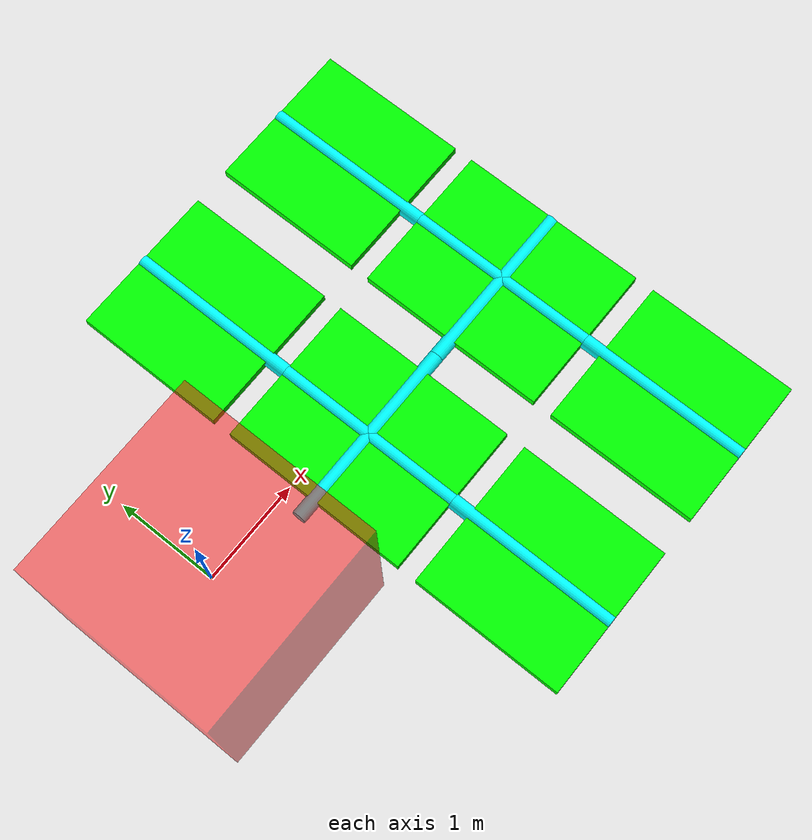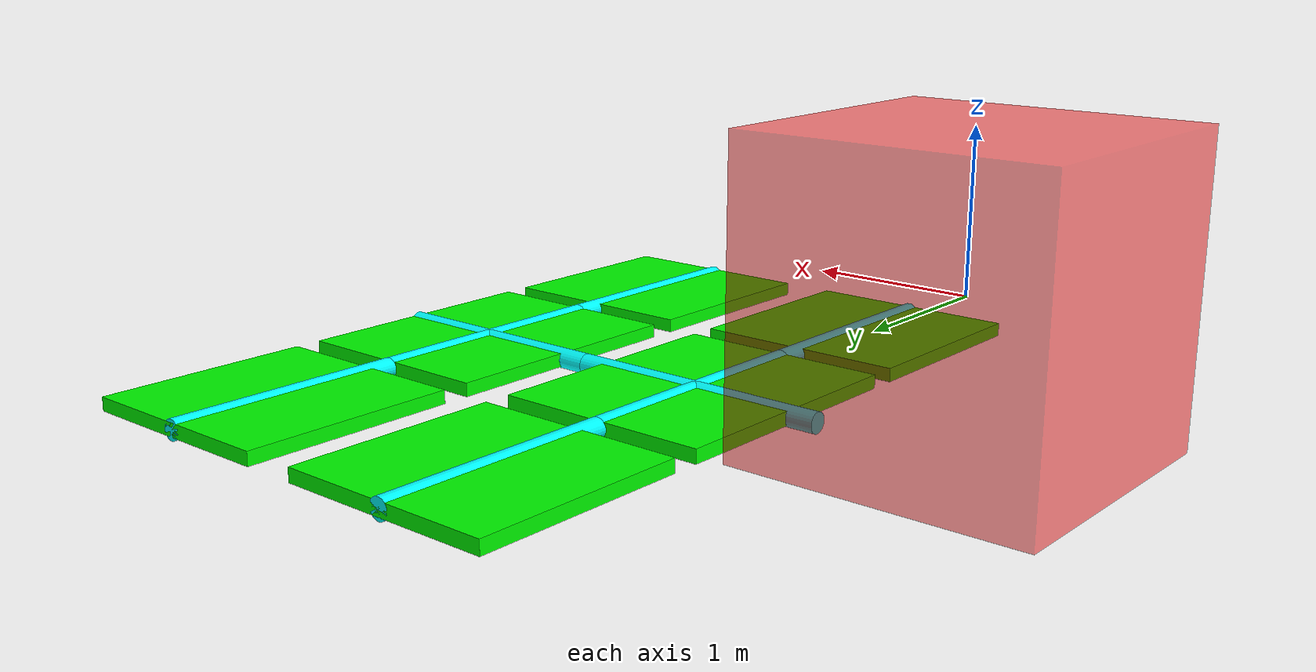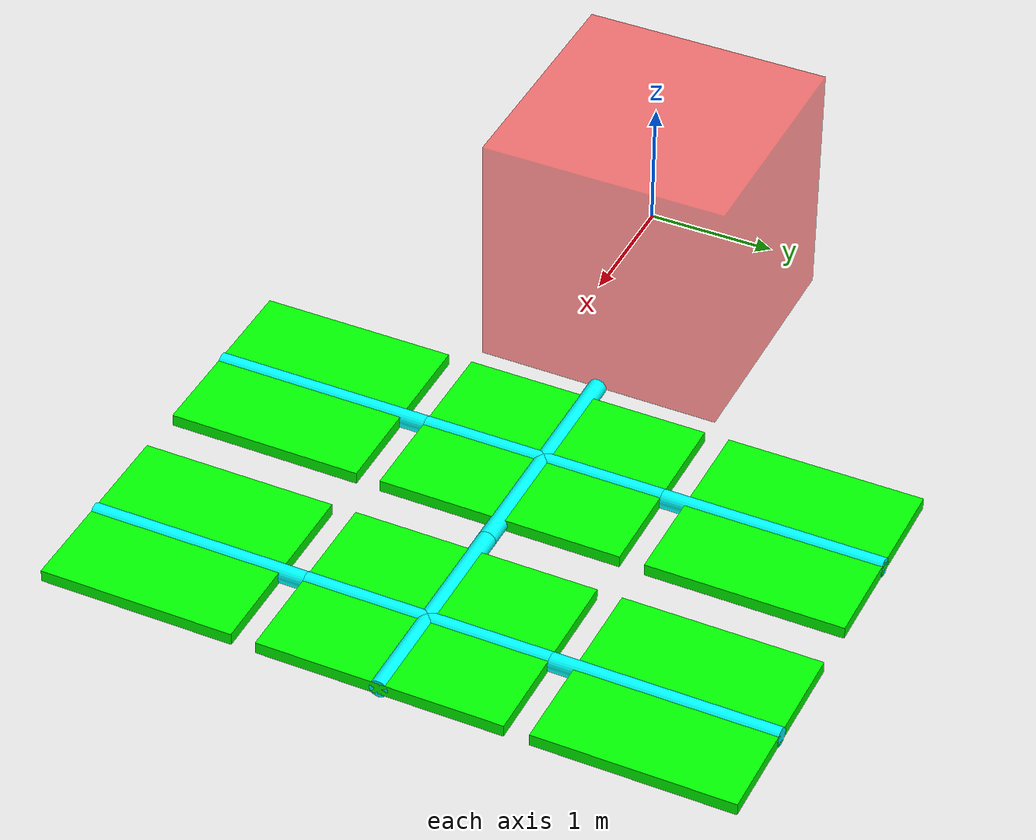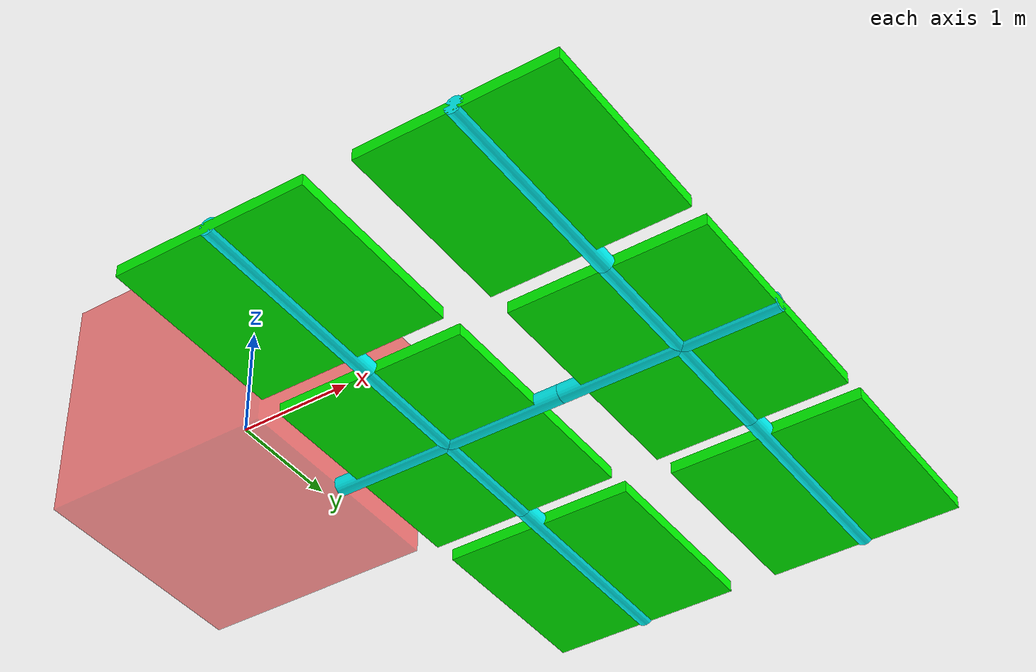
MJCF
<mujoco>
	<option gravity="0 0 0">
		<flag contact="disable"/>
	</option>

	<worldbody>
		<body name="hub">
			<freejoint/>
			<geom name="hub_box" type="box" size="1 1 1" density="700" rgba="1 0 0 0.5"/>

			<body name="panel_10" pos="1 0 -1" xyaxes="0 -1 0 0 0 -1">
				<joint name="panel_10_deploy" axis="1 0 0" range="0 90"/>
				<geom name="panel_10_box" type="box"  pos="0 0 1" size="1 0.05 0.8" density="500" rgba="0 1 0 1"/>
				<geom name="panel_10_bar" type="cylinder" fromto="0 0 0 0 0 2" size=".075" density="1000" rgba="0 1 1 1"/>
				<geom name="panel_10_cbar" type="cylinder" fromto="1 0 1 -1 0 1" size=".075" density="1000" rgba="0 1 1 1" />

				<body name="panel_1p" pos="1 0 1" axisangle="0 1 0 90">
                    <joint name="panel_1p_deploy" axis="1 0 0" range="0 180"/>
                    <geom name="panel_1p_box" type="box"  pos="0 0 1" size="0.8 0.05 0.8" density="500" rgba="0 1 0 1"/>
					<geom name="panel_1p_bar" type="cylinder" fromto="0 0 0 0 0 1.8" size=".075" density="1000" rgba="0 1 1 1" />
                </body>

				<body name="panel_1n" pos="-1 0 1" axisangle="0 -1 0 90">
                    <joint name="panel_1n_deploy" axis="1 0 0" range="0 180"/>
                    <geom name="panel_1n_box" type="box"  pos="0 0 1" size="0.8 0.05 0.8" density="500" rgba="0 1 0 1"/>
					<geom name="panel_1n_bar" type="cylinder"  fromto="0 0 0 0 0 1.8" size=".075" density="1000" rgba="0 1 1 1" />
                </body>

                <body name="panel_20" pos="0 0 2">
                    <joint name="panel_20_deploy" axis="-1 0 0" range="0 180"/>
                    <geom name="panel_20_box" type="box"  pos="0 0 1" size="1 0.05 0.8" density="500" rgba="0 1 0 1"/>
					<geom name="panel_20_bar" type="cylinder"  fromto="0 0 0 0 0 1.8" size=".075" density="1000" rgba="0 1 1 1" />
					<geom name="panel_20_cbar" type="cylinder" fromto="1 0 1 -1 0 1" size=".075" density="1000" rgba="0 1 1 1" />

					<body name="panel_2p" pos="1 0 1" axisangle="0 1 0 90">
						<joint name="panel_2p_deploy" axis="1 0 0" range="0 180"/>
						<geom name="panel_2p_box" type="box"  pos="0 0 1" size="0.8 0.05 0.8" density="500" rgba="0 1 0 1"/>
						<geom name="panel_2p_bar" type="cylinder"  fromto="0 0 0 0 0 1.8" size=".075" density="1000" rgba="0 1 1 1" />
					</body>

					<body name="panel_2n" pos="-1 0 1" axisangle="0 -1 0 90">
						<joint name="panel_2n_deploy" axis="1 0 0" range="0 180"/>
						<geom name="panel_2n_box" type="box"  pos="0 0 1" size="0.8 0.05 0.8" density="500" rgba="0 1 0 1"/>
						<geom name="panel_2n_bar" type="cylinder"  fromto="0 0 0 0 0 1.8" size=".075" density="1000" rgba="0 1 1 1" />
					</body>
                </body>
			</body>

		</body>

	</worldbody>

</mujoco>
